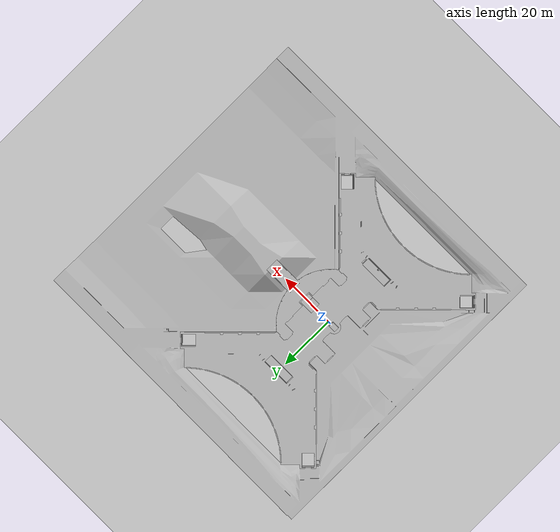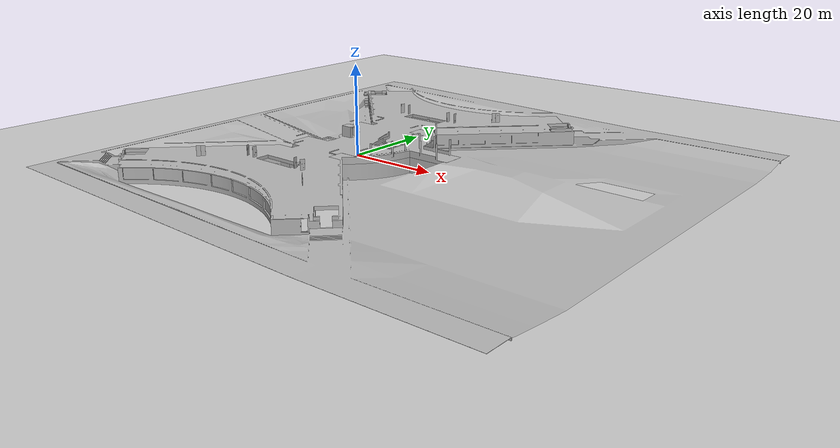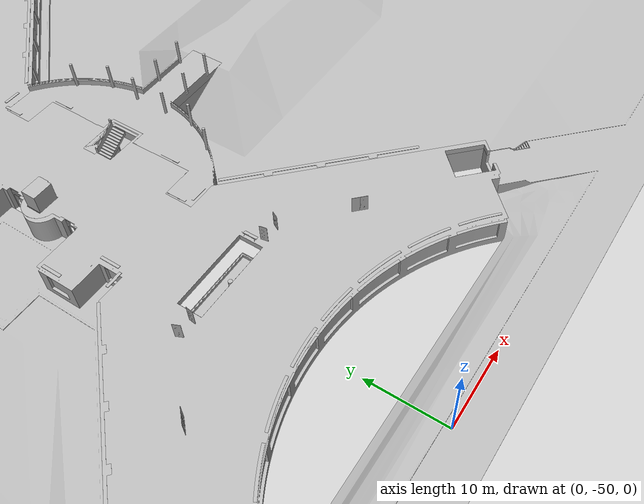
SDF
<sdf version="1.6">
 <world name="TIbuilding">
  <physics type="ode">
   <max_step_size>0.0002</max_step_size>
   <real_time_factor>1</real_time_factor>
   <real_time_update_rate>5000</real_time_update_rate>
   <ode>
    <solver><type>quick</type><iters>50</iters><sor>1.3</sor></solver>
    <constraints>
     <cfm>0.0</cfm>
     <erp>0.2</erp>
     <contact_max_correcting_vel>10.0</contact_max_correcting_vel>
     <contact_surface_layer>0.001</contact_surface_layer>
    </constraints>
   </ode>
  </physics>
  <gravity>0 0 -9.8000000000000007</gravity>
  <magnetic_field>5.5644999999999998e-06 2.2875799999999999e-05 -4.2388400000000002e-05</magnetic_field>
  <atmosphere type="adiabatic"/>
  <scene>
   <ambient>0.400000006 0.400000006 0.400000006 1</ambient>
   <background>0.699999988 0.699999988 0.699999988 1</background>
   <shadows>true</shadows>
  </scene>
  <model name="ground_plane">
   <static>true</static>
   <link name="link">
    <collision name="collision">
     <geometry><plane><normal>0 0 1</normal><size>100 100</size></plane></geometry>
    </collision>
    <visual name="visual">
     <geometry><plane><normal>0 0 1</normal><size>100 100</size></plane></geometry>
     <material>
      <ambient>0.800000012 0.800000012 0.800000012 1</ambient>
      <diffuse>0.800000012 0.800000012 0.800000012 1</diffuse>
      <specular>0.800000012 0.800000012 0.800000012 1</specular>
     </material>
    </visual>
    <pose>0 0 -1 0 0 0</pose>
    <inertial>
     <mass>1</mass>
     <inertia><ixx>1</ixx><ixy>0</ixy><ixz>0</ixz><iyy>1</iyy><iyz>0</iyz><izz>1</izz></inertia>
    </inertial>
   </link>
  </model>
  <model name="GroundP1">
   <link name="link">
    <visual name="visual"><geometry><mesh><uri>file://worlds/meshes/GroundP1.dae</uri></mesh></geometry></visual>
    <collision name="collision">
     <geometry><mesh><uri>file://worlds/meshes/collisions/GroundCollisionP1.dae</uri></mesh></geometry>
    </collision>
    <inertial>
     <mass>1</mass>
     <inertia><ixx>1</ixx><ixy>0</ixy><ixz>0</ixz><iyy>1</iyy><iyz>0</iyz><izz>1</izz></inertia>
    </inertial>
   </link>
   <pose>-22 -45 0 0 0 0</pose>
   <static>true</static>
  </model>
  <model name="PorchP1">
   <link name="link">
    <visual name="visual"><geometry><mesh><uri>file://worlds/meshes/PorchP1.dae</uri></mesh></geometry></visual>
    <collision name="collision">
     <geometry><mesh><uri>file://worlds/meshes/PorchP1.dae</uri></mesh></geometry>
    </collision>
    <inertial>
     <mass>1</mass>
     <inertia><ixx>1</ixx><ixy>0</ixy><ixz>0</ixz><iyy>1</iyy><iyz>0</iyz><izz>1</izz></inertia>
    </inertial>
   </link>
   <pose>-22 -45 0 0 0 0</pose>
   <static>true</static>
  </model>
  <model name="StairsP1">
   <link name="link">
    <visual name="visual"><geometry><mesh><uri>file://worlds/meshes/StairsP1.dae</uri></mesh></geometry></visual>
    <collision name="collision">
     <geometry><mesh><uri>file://worlds/meshes/StairsP1.dae</uri></mesh></geometry>
    </collision>
    <inertial>
     <mass>1</mass>
     <inertia><ixx>1</ixx><ixy>0</ixy><ixz>0</ixz><iyy>1</iyy><iyz>0</iyz><izz>1</izz></inertia>
    </inertial>
   </link>
   <pose>-22 -45 0 0 0 0</pose>
   <static>true</static>
  </model>
  <model name="Elevator">
   <link name="link">
    <visual name="visual"><geometry><mesh><uri>file://worlds/meshes/Elevator.dae</uri></mesh></geometry></visual>
    <collision name="collision">
     <geometry><mesh><uri>file://worlds/meshes/Elevator.dae</uri></mesh></geometry>
    </collision>
    <inertial>
     <mass>1</mass>
     <inertia><ixx>1</ixx><ixy>0</ixy><ixz>0</ixz><iyy>1</iyy><iyz>0</iyz><izz>1</izz></inertia>
    </inertial>
   </link>
   <pose>-21.91 -45 0 0 0 0</pose>
   <static>true</static>
  </model>
  <model name="WallsPB">
   <link name="link">
    <visual name="visual"><geometry><mesh><uri>file://worlds/meshes/WallsPB.dae</uri></mesh></geometry></visual>
    <collision name="collision">
     <geometry><mesh><uri>file://worlds/meshes/WallsPB.dae</uri></mesh></geometry>
    </collision>
    <inertial>
     <mass>1</mass>
     <inertia><ixx>1</ixx><ixy>0</ixy><ixz>0</ixz><iyy>1</iyy><iyz>0</iyz><izz>1</izz></inertia>
    </inertial>
   </link>
   <pose>-22 -45 0 0 0 0</pose>
   <static>true</static>
  </model>
  <model name="LabDoorRight">
   <link name="link">
    <visual name="visual">
     <geometry><mesh><uri>file://worlds/meshes/LabDoorRight.dae</uri></mesh></geometry>
    </visual>
    <collision name="collision">
     <geometry><mesh><uri>file://worlds/meshes/LabDoorRight.dae</uri></mesh></geometry>
    </collision>
    <inertial>
     <mass>1</mass>
     <inertia><ixx>1</ixx><ixy>0</ixy><ixz>0</ixz><iyy>1</iyy><iyz>0</iyz><izz>1</izz></inertia>
    </inertial>
   </link>
   <pose>-7.3000001907348633 -24.2593994140625 4 0 0 1.9777001551464033</pose>
   <static>true</static>
  </model>
  <model name="LabDoorLeft">
   <link name="link">
    <visual name="visual">
     <geometry><mesh><uri>file://worlds/meshes/LabDoorLeft.dae</uri></mesh></geometry>
    </visual>
    <collision name="collision">
     <geometry><mesh><uri>file://worlds/meshes/LabDoorLeft.dae</uri></mesh></geometry>
    </collision>
    <inertial>
     <mass>1</mass>
     <inertia><ixx>1</ixx><ixy>0</ixy><ixz>0</ixz><iyy>1</iyy><iyz>0</iyz><izz>1</izz></inertia>
    </inertial>
   </link>
   <pose>-5.5008502006530762 -24.259399414062504 4 0 0 -1.6946655886397042</pose>
   <static>true</static>
  </model>
  <model name="LabDoorLeft_01">
   <link name="link">
    <visual name="visual">
     <geometry><mesh><uri>file://worlds/meshes/LabDoorLeft.dae</uri></mesh></geometry>
    </visual>
    <collision name="collision">
     <geometry><mesh><uri>file://worlds/meshes/LabDoorLeft.dae</uri></mesh></geometry>
    </collision>
    <inertial>
     <mass>1</mass>
     <inertia><ixx>1</ixx><ixy>0</ixy><ixz>0</ixz><iyy>1</iyy><iyz>0</iyz><izz>1</izz></inertia>
    </inertial>
   </link>
   <pose>8.3232870101928693 -24.253730773925778 4 0 0 -2.0334698052796125</pose>
   <static>true</static>
  </model>
  <model name="LabDoorRight_01">
   <link name="link">
    <visual name="visual">
     <geometry><mesh><uri>file://worlds/meshes/LabDoorRight.dae</uri></mesh></geometry>
    </visual>
    <collision name="collision">
     <geometry><mesh><uri>file://worlds/meshes/LabDoorRight.dae</uri></mesh></geometry>
    </collision>
    <inertial>
     <mass>1</mass>
     <inertia><ixx>1</ixx><ixy>0</ixy><ixz>0</ixz><iyy>1</iyy><iyz>0</iyz><izz>1</izz></inertia>
    </inertial>
   </link>
   <pose>6.518010139465332 -24.259399414062496 4 0 0 1.748327286818226</pose>
   <static>true</static>
  </model>
  <model name="LabDoorLeft_02">
   <link name="link">
    <visual name="visual">
     <geometry><mesh><uri>file://worlds/meshes/LabDoorLeft.dae</uri></mesh></geometry>
    </visual>
    <collision name="collision">
     <geometry><mesh><uri>file://worlds/meshes/LabDoorLeft.dae</uri></mesh></geometry>
    </collision>
    <inertial>
     <mass>1</mass>
     <inertia><ixx>1</ixx><ixy>0</ixy><ixz>0</ixz><iyy>1</iyy><iyz>0</iyz><izz>1</izz></inertia>
    </inertial>
   </link>
   <pose>-13.734 -29.545999999999999 4 0 0 0.7854000000000001</pose>
   <static>true</static>
  </model>
  <model name="LabDoorRight_02">
   <link name="link">
    <visual name="visual">
     <geometry><mesh><uri>file://worlds/meshes/LabDoorRight.dae</uri></mesh></geometry>
    </visual>
    <collision name="collision">
     <geometry><mesh><uri>file://worlds/meshes/LabDoorRight.dae</uri></mesh></geometry>
    </collision>
    <inertial>
     <mass>1</mass>
     <inertia><ixx>1</ixx><ixy>0</ixy><ixz>0</ixz><iyy>1</iyy><iyz>0</iyz><izz>1</izz></inertia>
    </inertial>
   </link>
   <pose>-15.006999999999998 -30.818999999999999 4 0 0 0.7854000000000001</pose>
   <static>true</static>
  </model>
  <model name="LabDoorLeft_03">
   <link name="link">
    <visual name="visual">
     <geometry><mesh><uri>file://worlds/meshes/LabDoorLeft.dae</uri></mesh></geometry>
    </visual>
    <collision name="collision">
     <geometry><mesh><uri>file://worlds/meshes/LabDoorLeft.dae</uri></mesh></geometry>
    </collision>
    <inertial>
     <mass>1</mass>
     <inertia><ixx>1</ixx><ixy>0</ixy><ixz>0</ixz><iyy>1</iyy><iyz>0</iyz><izz>1</izz></inertia>
    </inertial>
   </link>
   <pose>15.94 -30.784000000000002 4 0 0 -0.7854000000000001</pose>
   <static>true</static>
  </model>
  <model name="LabDoorRight_03">
   <link name="link">
    <visual name="visual">
     <geometry><mesh><uri>file://worlds/meshes/LabDoorRight.dae</uri></mesh></geometry>
    </visual>
    <collision name="collision">
     <geometry><mesh><uri>file://worlds/meshes/LabDoorRight.dae</uri></mesh></geometry>
    </collision>
    <inertial>
     <mass>1</mass>
     <inertia><ixx>1</ixx><ixy>0</ixy><ixz>0</ixz><iyy>1</iyy><iyz>0</iyz><izz>1</izz></inertia>
    </inertial>
   </link>
   <pose>14.667999999999999 -29.511000000000003 4 0 0 -0.7854000000000001</pose>
   <static>true</static>
  </model>
  <model name="LabDoorLeft_04">
   <link name="link">
    <visual name="visual">
     <geometry><mesh><uri>file://worlds/meshes/LabDoorLeft.dae</uri></mesh></geometry>
    </visual>
    <collision name="collision">
     <geometry><mesh><uri>file://worlds/meshes/LabDoorLeft.dae</uri></mesh></geometry>
    </collision>
    <inertial>
     <mass>1</mass>
     <inertia><ixx>1</ixx><ixy>0</ixy><ixz>0</ixz><iyy>1</iyy><iyz>0</iyz><izz>1</izz></inertia>
    </inertial>
   </link>
   <pose>6.5180001258850098 24.117000579833984 4 0 0 1.3941193897865334</pose>
   <static>true</static>
  </model>
  <model name="LabDoorRight_04">
   <link name="link">
    <visual name="visual">
     <geometry><mesh><uri>file://worlds/meshes/LabDoorRight.dae</uri></mesh></geometry>
    </visual>
    <collision name="collision">
     <geometry><mesh><uri>file://worlds/meshes/LabDoorRight.dae</uri></mesh></geometry>
    </collision>
    <inertial>
     <mass>1</mass>
     <inertia><ixx>1</ixx><ixy>0</ixy><ixz>0</ixz><iyy>1</iyy><iyz>0</iyz><izz>1</izz></inertia>
    </inertial>
   </link>
   <pose>8.3179998397827148 24.156000137329105 4 0 0 -1.4906089774544777</pose>
   <static>true</static>
  </model>
  <model name="LabDoorLeft_05">
   <link name="link">
    <visual name="visual">
     <geometry><mesh><uri>file://worlds/meshes/LabDoorLeft.dae</uri></mesh></geometry>
    </visual>
    <collision name="collision">
     <geometry><mesh><uri>file://worlds/meshes/LabDoorLeft.dae</uri></mesh></geometry>
    </collision>
    <inertial>
     <mass>1</mass>
     <inertia><ixx>1</ixx><ixy>0</ixy><ixz>0</ixz><iyy>1</iyy><iyz>0</iyz><izz>1</izz></inertia>
    </inertial>
   </link>
   <pose>-7.2989997863769567 24.118999481201172 4 0 0 1.2353506685148907</pose>
   <static>true</static>
  </model>
  <model name="LabDoorRight_05">
   <link name="link">
    <visual name="visual">
     <geometry><mesh><uri>file://worlds/meshes/LabDoorRight.dae</uri></mesh></geometry>
    </visual>
    <collision name="collision">
     <geometry><mesh><uri>file://worlds/meshes/LabDoorRight.dae</uri></mesh></geometry>
    </collision>
    <inertial>
     <mass>1</mass>
     <inertia><ixx>1</ixx><ixy>0</ixy><ixz>0</ixz><iyy>1</iyy><iyz>0</iyz><izz>1</izz></inertia>
    </inertial>
   </link>
   <pose>-5.5 24.156000137329105 4 0 0 -1.4768044750288782</pose>
   <static>true</static>
  </model>
  <model name="LabDoorLeft_06">
   <link name="link">
    <visual name="visual">
     <geometry><mesh><uri>file://worlds/meshes/LabDoorLeft.dae</uri></mesh></geometry>
    </visual>
    <collision name="collision">
     <geometry><mesh><uri>file://worlds/meshes/LabDoorLeft.dae</uri></mesh></geometry>
    </collision>
    <inertial>
     <mass>1</mass>
     <inertia><ixx>1</ixx><ixy>0</ixy><ixz>0</ixz><iyy>1</iyy><iyz>0</iyz><izz>1</izz></inertia>
    </inertial>
   </link>
   <pose>14.699999809265137 29.408000946044922 4 0 0 -2.357247605219043</pose>
   <static>true</static>
  </model>
  <model name="LabDoorRight_06">
   <link name="link">
    <visual name="visual">
     <geometry><mesh><uri>file://worlds/meshes/LabDoorRight.dae</uri></mesh></geometry>
    </visual>
    <collision name="collision">
     <geometry><mesh><uri>file://worlds/meshes/LabDoorRight.dae</uri></mesh></geometry>
    </collision>
    <inertial>
     <mass>1</mass>
     <inertia><ixx>1</ixx><ixy>0</ixy><ixz>0</ixz><iyy>1</iyy><iyz>0</iyz><izz>1</izz></inertia>
    </inertial>
   </link>
   <pose>15.97200012207032 30.680999755859375 4 0 0 -2.3566253486507671</pose>
   <static>true</static>
  </model>
  <model name="StairsPB">
   <link name="link">
    <visual name="visual"><geometry><mesh><uri>file://worlds/meshes/StairsPB.dae</uri></mesh></geometry></visual>
    <collision name="collision">
     <geometry><mesh><uri>file://worlds/meshes/StairsPB.dae</uri></mesh></geometry>
    </collision>
    <inertial>
     <mass>1</mass>
     <inertia><ixx>1</ixx><ixy>0</ixy><ixz>0</ixz><iyy>1</iyy><iyz>0</iyz><izz>1</izz></inertia>
    </inertial>
   </link>
   <pose>-22 -45 0 0 0 0</pose>
   <static>true</static>
  </model>
  <model name="Ground">
   <link name="link">
    <visual name="visual"><geometry><mesh><uri>file://worlds/meshes/Ground.dae</uri></mesh></geometry></visual>
    <collision name="collision">
     <geometry><mesh><uri>file://worlds/meshes/Ground.dae</uri></mesh></geometry>
    </collision>
    <inertial>
     <mass>1</mass>
     <inertia><ixx>1</ixx><ixy>0</ixy><ixz>0</ixz><iyy>1</iyy><iyz>0</iyz><izz>1</izz></inertia>
    </inertial>
   </link>
   <pose>-22 -45 0 0 0 0</pose>
   <static>true</static>
  </model>
  <model name="Banc">
   <link name="link">
    <visual name="visual"><geometry><mesh><uri>file://worlds/meshes/Banc.dae</uri></mesh></geometry></visual>
    <collision name="collision">
     <geometry><mesh><uri>file://worlds/meshes/Banc.dae</uri></mesh></geometry>
    </collision>
    <inertial>
     <mass>1</mass>
     <inertia><ixx>1</ixx><ixy>0</ixy><ixz>0</ixz><iyy>1</iyy><iyz>0</iyz><izz>1</izz></inertia>
    </inertial>
   </link>
   <pose>5.9299999999999997 -22.350000000000001 4 0 0 0</pose>
   <static>true</static>
  </model>
  <light name="sun" type="directional">
   <pose>0 0 10 0 0 0</pose>
   <direction>-0.5 0.10000000000000001 -0.90000000000000002</direction>
   <diffuse>0.800000012 0.800000012 0.800000012 1</diffuse>
   <specular>0.200000003 0.200000003 0.200000003 1</specular>
   <attenuation>
    <range>1000</range>
    <linear>0.01</linear>
    <constant>0.90000000000000002</constant>
    <quadratic>0.001</quadratic>
   </attenuation>
   <spot><inner_angle>0</inner_angle><outer_angle>0</outer_angle><falloff>0</falloff></spot>
  </light>
 </world>
</sdf>
